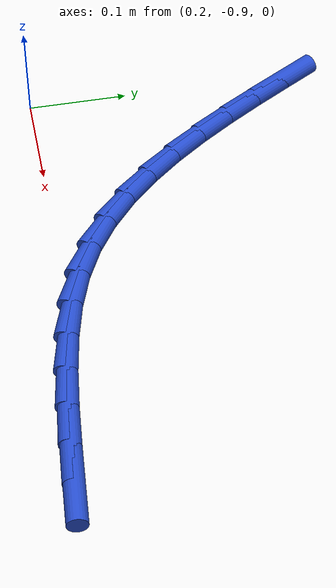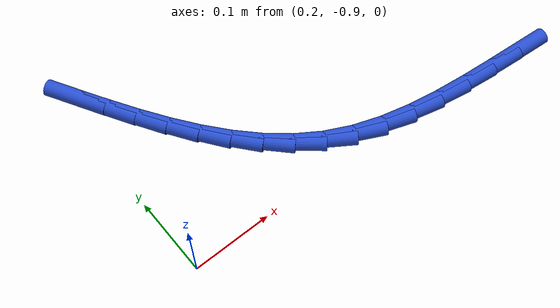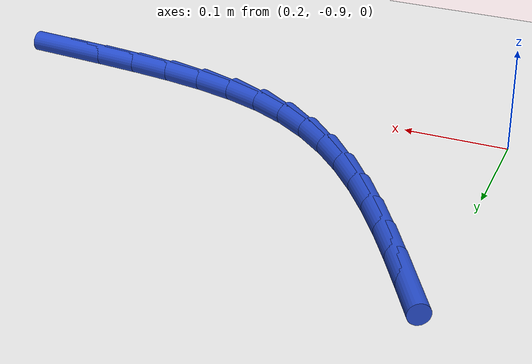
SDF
<sdf version="1.6">
 <world name="default">
  <model name="ground_plane">
   <static>1</static>
   <link name="link">
    <collision name="collision">
     <geometry><plane><normal>0 0 1</normal><size>100 100</size></plane></geometry>
     <surface><friction><ode><mu>100</mu><mu2>50</mu2></ode></friction></surface>
    </collision>
    <visual name="visual">
     <cast_shadows>0</cast_shadows>
     <geometry><plane><normal>0 0 1</normal><size>100 100</size></plane></geometry>
     <material>
      <script><uri>file://media/materials/scripts/gazebo.material</uri><name>Gazebo/WhiteGlow</name></script>
     </material>
    </visual>
   </link>
  </model>
  <model name="line">
   <link name="link_167">
    <pose>0.6758004978197879 -0.9265678490426477 0.01 0 1.57 -0.08249828778107703</pose>
    <collision name="collision">
     <geometry><cylinder><radius>0.01</radius><length>0.08</length></cylinder></geometry>
    </collision>
    <visual name="visual">
     <material>
      <script><name>Gazebo/Blue</name><uri>file://media/materials/scripts/gazebo.material</uri></script>
     </material>
     <geometry><cylinder><radius>0.01</radius><length>0.08</length></cylinder></geometry>
    </visual>
   </link>
   <link name="link_168">
    <pose>0.6346736559214824 -0.9231672366824171 0.01 0 1.57 -0.09555254940732455</pose>
    <collision name="collision">
     <geometry><cylinder><radius>0.01</radius><length>0.08</length></cylinder></geometry>
    </collision>
    <visual name="visual">
     <material>
      <script><name>Gazebo/Blue</name><uri>file://media/materials/scripts/gazebo.material</uri></script>
     </material>
     <geometry><cylinder><radius>0.01</radius><length>0.08</length></cylinder></geometry>
    </visual>
   </link>
   <link name="link_169">
    <pose>0.5939219584494565 -0.9192614137562061 0.01 0 1.57 -0.12631735489974633</pose>
    <collision name="collision">
     <geometry><cylinder><radius>0.01</radius><length>0.08</length></cylinder></geometry>
    </collision>
    <visual name="visual">
     <material>
      <script><name>Gazebo/Blue</name><uri>file://media/materials/scripts/gazebo.material</uri></script>
     </material>
     <geometry><cylinder><radius>0.01</radius><length>0.08</length></cylinder></geometry>
    </visual>
   </link>
   <link name="link_170">
    <pose>0.5539658178682557 -0.9141872430662535 0.01 0 1.57 -0.17640285031841202</pose>
    <collision name="collision">
     <geometry><cylinder><radius>0.01</radius><length>0.08</length></cylinder></geometry>
    </collision>
    <visual name="visual">
     <material>
      <script><name>Gazebo/Blue</name><uri>file://media/materials/scripts/gazebo.material</uri></script>
     </material>
     <geometry><cylinder><radius>0.01</radius><length>0.08</length></cylinder></geometry>
    </visual>
   </link>
   <link name="link_171">
    <pose>0.515225646642427 -0.9072815874147993 0.01 0 1.57 -0.2481299403727428</pose>
    <collision name="collision">
     <geometry><cylinder><radius>0.01</radius><length>0.08</length></cylinder></geometry>
    </collision>
    <visual name="visual">
     <material>
      <script><name>Gazebo/Blue</name><uri>file://media/materials/scripts/gazebo.material</uri></script>
     </material>
     <geometry><cylinder><radius>0.01</radius><length>0.08</length></cylinder></geometry>
    </visual>
   </link>
   <link name="link_172">
    <pose>0.47812185723651607 -0.8978813096040815 0.01 0 1.57 -0.34406747912506547</pose>
    <collision name="collision">
     <geometry><cylinder><radius>0.01</radius><length>0.08</length></cylinder></geometry>
    </collision>
    <visual name="visual">
     <material>
      <script><name>Gazebo/Blue</name><uri>file://media/materials/scripts/gazebo.material</uri></script>
     </material>
     <geometry><cylinder><radius>0.01</radius><length>0.08</length></cylinder></geometry>
    </visual>
   </link>
   <link name="link_173">
    <pose>0.4430748621150696 -0.8853232724363398 0.01 0 1.57 -0.465350796823478</pose>
    <collision name="collision">
     <geometry><cylinder><radius>0.01</radius><length>0.08</length></cylinder></geometry>
    </collision>
    <visual name="visual">
     <material>
      <script><name>Gazebo/Blue</name><uri>file://media/materials/scripts/gazebo.material</uri></script>
     </material>
     <geometry><cylinder><radius>0.01</radius><length>0.08</length></cylinder></geometry>
    </visual>
   </link>
   <link name="link_174">
    <pose>0.41049350712600907 -0.8689631705444562 0.01 0 1.57 -0.5941452265072417</pose>
    <collision name="collision">
     <geometry><cylinder><radius>0.01</radius><length>0.08</length></cylinder></geometry>
    </collision>
    <visual name="visual">
     <material>
      <script><name>Gazebo/Blue</name><uri>file://media/materials/scripts/gazebo.material</uri></script>
     </material>
     <geometry><cylinder><radius>0.01</radius><length>0.08</length></cylinder></geometry>
    </visual>
   </link>
   <link name="link_175">
    <pose>0.380466619205844 -0.8486777274964051 0.01 0 1.57 -0.7083044566899793</pose>
    <collision name="collision">
     <geometry><cylinder><radius>0.01</radius><length>0.08</length></cylinder></geometry>
    </collision>
    <visual name="visual">
     <material>
      <script><name>Gazebo/Blue</name><uri>file://media/materials/scripts/gazebo.material</uri></script>
     </material>
     <geometry><cylinder><radius>0.01</radius><length>0.08</length></cylinder></geometry>
    </visual>
   </link>
   <link name="link_176">
    <pose>0.35272978746745504 -0.8249187801441447 0.01 0 1.57 -0.8048604358928939</pose>
    <collision name="collision">
     <geometry><cylinder><radius>0.01</radius><length>0.08</length></cylinder></geometry>
    </collision>
    <visual name="visual">
     <material>
      <script><name>Gazebo/Blue</name><uri>file://media/materials/scripts/gazebo.material</uri></script>
     </material>
     <geometry><cylinder><radius>0.01</radius><length>0.08</length></cylinder></geometry>
    </visual>
   </link>
   <link name="link_177">
    <pose>0.3270003703038472 -0.7981678471247526 0.01 0 1.57 -0.8837683161963623</pose>
    <collision name="collision">
     <geometry><cylinder><radius>0.01</radius><length>0.08</length></cylinder></geometry>
    </collision>
    <visual name="visual">
     <material>
      <script><name>Gazebo/Blue</name><uri>file://media/materials/scripts/gazebo.material</uri></script>
     </material>
     <geometry><cylinder><radius>0.01</radius><length>0.08</length></cylinder></geometry>
    </visual>
   </link>
   <link name="link_178">
    <pose>0.3029957261080253 -0.7689064470753068 0.01 0 1.57 -0.9460693356846999</pose>
    <collision name="collision">
     <geometry><cylinder><radius>0.01</radius><length>0.08</length></cylinder></geometry>
    </collision>
    <visual name="visual">
     <material>
      <script><name>Gazebo/Blue</name><uri>file://media/materials/scripts/gazebo.material</uri></script>
     </material>
     <geometry><cylinder><radius>0.01</radius><length>0.08</length></cylinder></geometry>
    </visual>
   </link>
   <link name="link_179">
    <pose>0.28043321327299436 -0.7376160986328851 0.01 0 1.57 -0.9931704635725277</pose>
    <collision name="collision">
     <geometry><cylinder><radius>0.01</radius><length>0.08</length></cylinder></geometry>
    </collision>
    <visual name="visual">
     <material>
      <script><name>Gazebo/Blue</name><uri>file://media/materials/scripts/gazebo.material</uri></script>
     </material>
     <geometry><cylinder><radius>0.01</radius><length>0.08</length></cylinder></geometry>
    </visual>
   </link>
   <link name="link_180">
    <pose>0.25903019019175927 -0.7047783204345655 0.01 0 1.57 -1.0263966711023802</pose>
    <collision name="collision">
     <geometry><cylinder><radius>0.01</radius><length>0.08</length></cylinder></geometry>
    </collision>
    <visual name="visual">
     <material>
      <script><name>Gazebo/Blue</name><uri>file://media/materials/scripts/gazebo.material</uri></script>
     </material>
     <geometry><cylinder><radius>0.01</radius><length>0.08</length></cylinder></geometry>
    </visual>
   </link>
   <link name="link_181">
    <pose>0.23850401525732484 -0.6708746311174256 0.01 0 1.57 -1.0467569657761417</pose>
    <collision name="collision">
     <geometry><cylinder><radius>0.01</radius><length>0.08</length></cylinder></geometry>
    </collision>
    <visual name="visual">
     <material>
      <script><name>Gazebo/Blue</name><uri>file://media/materials/scripts/gazebo.material</uri></script>
     </material>
     <geometry><cylinder><radius>0.01</radius><length>0.08</length></cylinder></geometry>
    </visual>
   </link>
   <link name="link_182">
    <pose>0.21857204686269616 -0.6363865493185435 0.01 0 1.57 -1.0548346685808214</pose>
    <collision name="collision">
     <geometry><cylinder><radius>0.01</radius><length>0.08</length></cylinder></geometry>
    </collision>
    <visual name="visual">
     <material>
      <script><name>Gazebo/Blue</name><uri>file://media/materials/scripts/gazebo.material</uri></script>
     </material>
     <geometry><cylinder><radius>0.01</radius><length>0.08</length></cylinder></geometry>
    </visual>
   </link>
  </model>
 </world>
</sdf>
